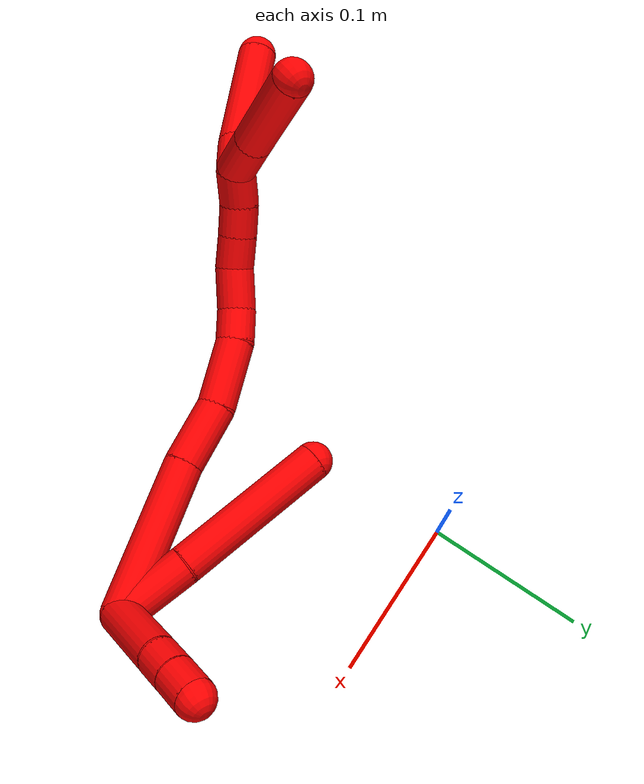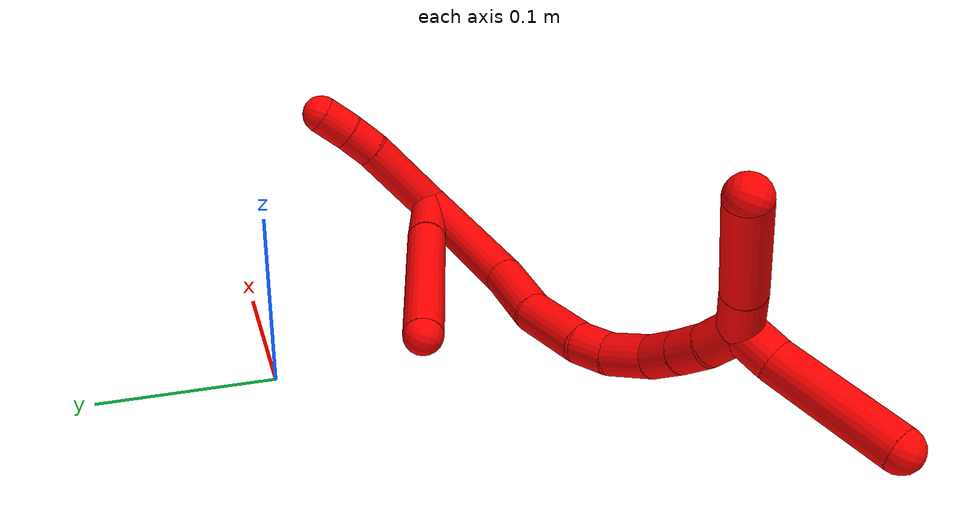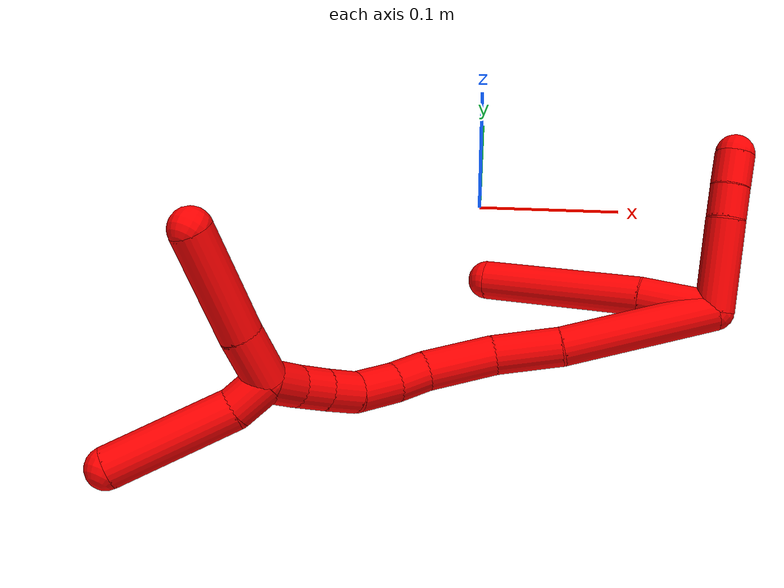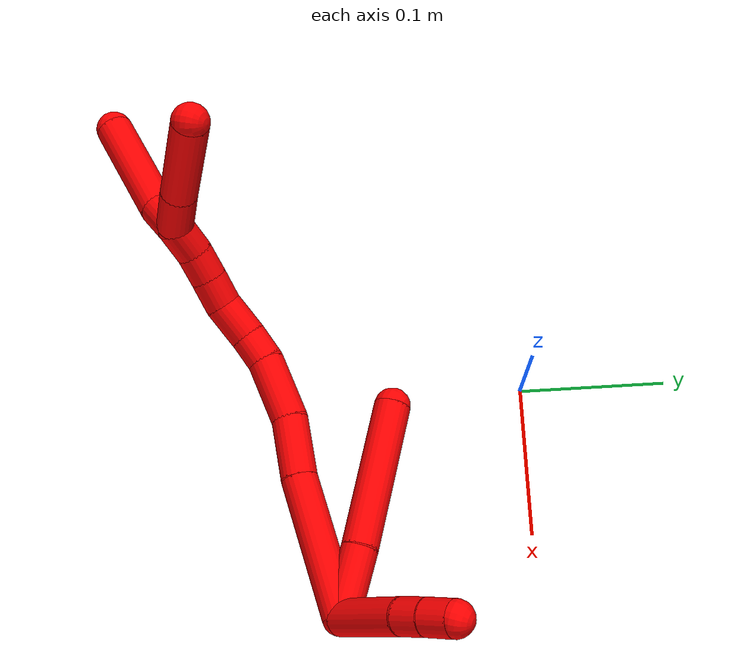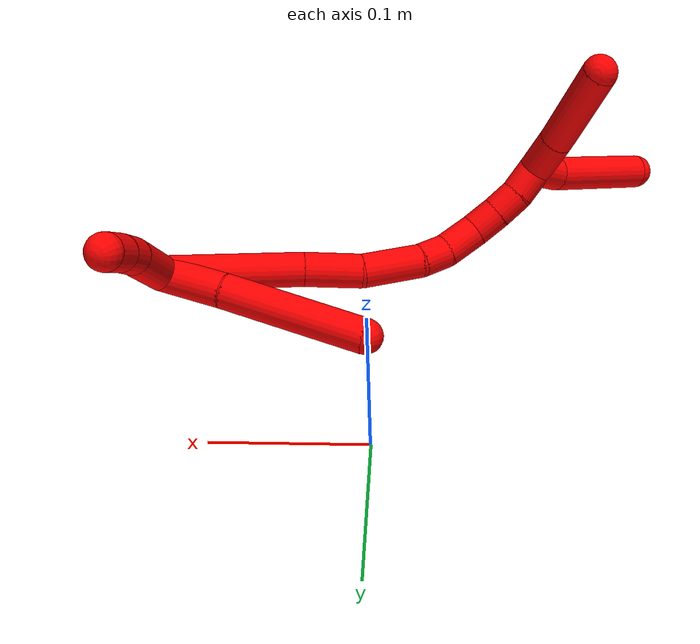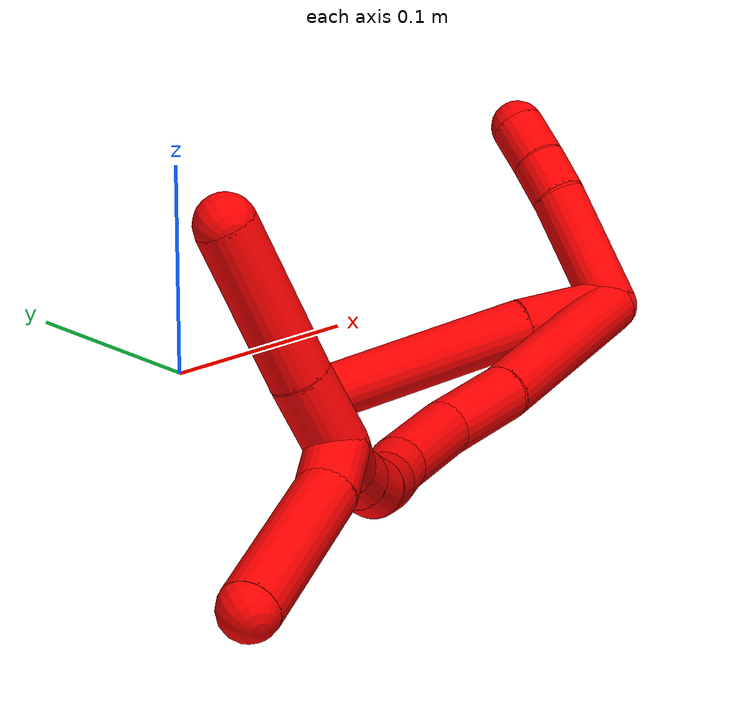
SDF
<sdf version="1.7">
 <world name="default">
  <model name="2">
   <static>0</static>
   <link name="2">
    <collision name="collision-cylinder-e_1_2_8">
     <pose>-0.009316 -0.021655 0.001677 1.49352 -0.405169 -0.37574</pose>
     <geometry><cylinder><radius>0.0125</radius><length>0.047266</length></cylinder></geometry>
     <surface>
      <friction><ode><mu>1.16</mu><mu2>1.16</mu2><slip1>0</slip1><slip2>0</slip2></ode></friction>
      <contact><ode><kp>1e+06</kp><kd>1</kd><max_vel>0</max_vel><min_depth>0.001</min_depth></ode></contact>
     </surface>
    </collision>
    <visual name="visual-cylinder-e_1_2_8">
     <pose>-0.009316 -0.021655 0.001677 1.49352 -0.405169 -0.37574</pose>
     <geometry><cylinder><radius>0.0125</radius><length>0.047266</length></cylinder></geometry>
     <material><ambient>1 0 0 1</ambient></material>
    </visual>
    <collision name="collision-cylinder-e_2_8_6">
     <pose>-0.035655 -0.091259 0.010397 1.42494 -0.337812 -0.292518</pose>
     <geometry><cylinder><radius>0.0125</radius><length>0.102734</length></cylinder></geometry>
     <surface>
      <friction><ode><mu>1.16</mu><mu2>1.16</mu2><slip1>0</slip1><slip2>0</slip2></ode></friction>
      <contact><ode><kp>1e+06</kp><kd>1</kd><max_vel>0</max_vel><min_depth>0.001</min_depth></ode></contact>
     </surface>
    </collision>
    <visual name="visual-cylinder-e_2_8_6">
     <pose>-0.035655 -0.091259 0.010397 1.42494 -0.337812 -0.292518</pose>
     <geometry><cylinder><radius>0.0125</radius><length>0.102734</length></cylinder></geometry>
     <material><ambient>1 0 0 1</ambient></material>
    </visual>
    <collision name="collision-cylinder-e_1_2_9">
     <pose>-0.014498 0.002185 -0.024985 -3.05435 -0.524136 2.81898</pose>
     <geometry><cylinder><radius>0.0125</radius><length>0.057938</length></cylinder></geometry>
     <surface>
      <friction><ode><mu>1.16</mu><mu2>1.16</mu2><slip1>0</slip1><slip2>0</slip2></ode></friction>
      <contact><ode><kp>1e+06</kp><kd>1</kd><max_vel>0</max_vel><min_depth>0.001</min_depth></ode></contact>
     </surface>
    </collision>
    <visual name="visual-cylinder-e_1_2_9">
     <pose>-0.014498 0.002185 -0.024985 -3.05435 -0.524136 2.81898</pose>
     <geometry><cylinder><radius>0.0125</radius><length>0.057938</length></cylinder></geometry>
     <material><ambient>1 0 0 1</ambient></material>
    </visual>
    <collision name="collision-cylinder-e_2_9_10">
     <pose>-0.033146 0.004626 -0.059387 -3.1145 -0.414976 3.01305</pose>
     <geometry><cylinder><radius>0.0125</radius><length>0.020588</length></cylinder></geometry>
     <surface>
      <friction><ode><mu>1.16</mu><mu2>1.16</mu2><slip1>0</slip1><slip2>0</slip2></ode></friction>
      <contact><ode><kp>1e+06</kp><kd>1</kd><max_vel>0</max_vel><min_depth>0.001</min_depth></ode></contact>
     </surface>
    </collision>
    <visual name="visual-cylinder-e_2_9_10">
     <pose>-0.033146 0.004626 -0.059387 -3.1145 -0.414976 3.01305</pose>
     <geometry><cylinder><radius>0.0125</radius><length>0.020588</length></cylinder></geometry>
     <material><ambient>1 0 0 1</ambient></material>
    </visual>
    <collision name="collision-cylinder-e_3_10_5">
     <pose>-0.040941 0.004908 -0.078903 -3.13894 -0.346272 3.12645</pose>
     <geometry><cylinder><radius>0.0125</radius><length>0.021473</length></cylinder></geometry>
     <surface>
      <friction><ode><mu>1.16</mu><mu2>1.16</mu2><slip1>0</slip1><slip2>0</slip2></ode></friction>
      <contact><ode><kp>1e+06</kp><kd>1</kd><max_vel>0</max_vel><min_depth>0.001</min_depth></ode></contact>
     </surface>
    </collision>
    <visual name="visual-cylinder-e_3_10_5">
     <pose>-0.040941 0.004908 -0.078903 -3.13894 -0.346272 3.12645</pose>
     <geometry><cylinder><radius>0.0125</radius><length>0.021473</length></cylinder></geometry>
     <material><ambient>1 0 0 1</ambient></material>
    </visual>
    <collision name="collision-cylinder-e_1_2_11">
     <pose>-0.020715 -0.03466 0.028487 0.882839 -0.432568 -0.206902</pose>
     <geometry><cylinder><radius>0.0125</radius><length>0.098832</length></cylinder></geometry>
     <surface>
      <friction><ode><mu>1.16</mu><mu2>1.16</mu2><slip1>0</slip1><slip2>0</slip2></ode></friction>
      <contact><ode><kp>1e+06</kp><kd>1</kd><max_vel>0</max_vel><min_depth>0.001</min_depth></ode></contact>
     </surface>
    </collision>
    <visual name="visual-cylinder-e_1_2_11">
     <pose>-0.020715 -0.03466 0.028487 0.882839 -0.432568 -0.206902</pose>
     <geometry><cylinder><radius>0.0125</radius><length>0.098832</length></cylinder></geometry>
     <material><ambient>1 0 0 1</ambient></material>
    </visual>
    <collision name="collision-cylinder-e_2_11_12">
     <pose>-0.050615 -0.085567 0.066901 1.02234 -0.449422 -0.255017</pose>
     <geometry><cylinder><radius>0.0125</radius><length>0.042279</length></cylinder></geometry>
     <surface>
      <friction><ode><mu>1.16</mu><mu2>1.16</mu2><slip1>0</slip1><slip2>0</slip2></ode></friction>
      <contact><ode><kp>1e+06</kp><kd>1</kd><max_vel>0</max_vel><min_depth>0.001</min_depth></ode></contact>
     </surface>
    </collision>
    <visual name="visual-cylinder-e_2_11_12">
     <pose>-0.050615 -0.085567 0.066901 1.02234 -0.449422 -0.255017</pose>
     <geometry><cylinder><radius>0.0125</radius><length>0.042279</length></cylinder></geometry>
     <material><ambient>1 0 0 1</ambient></material>
    </visual>
    <collision name="collision-cylinder-e_3_12_13">
     <pose>-0.071164 -0.115185 0.090566 0.771848 -0.535162 -0.221863</pose>
     <geometry><cylinder><radius>0.0125</radius><length>0.044572</length></cylinder></geometry>
     <surface>
      <friction><ode><mu>1.16</mu><mu2>1.16</mu2><slip1>0</slip1><slip2>0</slip2></ode></friction>
      <contact><ode><kp>1e+06</kp><kd>1</kd><max_vel>0</max_vel><min_depth>0.001</min_depth></ode></contact>
     </surface>
    </collision>
    <visual name="visual-cylinder-e_3_12_13">
     <pose>-0.071164 -0.115185 0.090566 0.771848 -0.535162 -0.221863</pose>
     <geometry><cylinder><radius>0.0125</radius><length>0.044572</length></cylinder></geometry>
     <material><ambient>1 0 0 1</ambient></material>
    </visual>
    <collision name="collision-cylinder-e_4_13_14">
     <pose>-0.088332 -0.132981 0.112201 0.510751 -0.569981 -0.152675</pose>
     <geometry><cylinder><radius>0.0125</radius><length>0.021504</length></cylinder></geometry>
     <surface>
      <friction><ode><mu>1.16</mu><mu2>1.16</mu2><slip1>0</slip1><slip2>0</slip2></ode></friction>
      <contact><ode><kp>1e+06</kp><kd>1</kd><max_vel>0</max_vel><min_depth>0.001</min_depth></ode></contact>
     </surface>
    </collision>
    <visual name="visual-cylinder-e_4_13_14">
     <pose>-0.088332 -0.132981 0.112201 0.510751 -0.569981 -0.152675</pose>
     <geometry><cylinder><radius>0.0125</radius><length>0.021504</length></cylinder></geometry>
     <material><ambient>1 0 0 1</ambient></material>
    </visual>
    <collision name="collision-cylinder-e_5_14_15">
     <pose>-0.10394 -0.140599 0.129411 0.330303 -0.783449 -0.137476</pose>
     <geometry><cylinder><radius>0.0125</radius><length>0.027791</length></cylinder></geometry>
     <surface>
      <friction><ode><mu>1.16</mu><mu2>1.16</mu2><slip1>0</slip1><slip2>0</slip2></ode></friction>
      <contact><ode><kp>1e+06</kp><kd>1</kd><max_vel>0</max_vel><min_depth>0.001</min_depth></ode></contact>
     </surface>
    </collision>
    <visual name="visual-cylinder-e_5_14_15">
     <pose>-0.10394 -0.140599 0.129411 0.330303 -0.783449 -0.137476</pose>
     <geometry><cylinder><radius>0.0125</radius><length>0.027791</length></cylinder></geometry>
     <material><ambient>1 0 0 1</ambient></material>
    </visual>
    <collision name="collision-cylinder-e_6_15_16">
     <pose>-0.123175 -0.146205 0.143381 0.478094 -1.06309 -0.28466</pose>
     <geometry><cylinder><radius>0.0125</radius><length>0.02158</length></cylinder></geometry>
     <surface>
      <friction><ode><mu>1.16</mu><mu2>1.16</mu2><slip1>0</slip1><slip2>0</slip2></ode></friction>
      <contact><ode><kp>1e+06</kp><kd>1</kd><max_vel>0</max_vel><min_depth>0.001</min_depth></ode></contact>
     </surface>
    </collision>
    <visual name="visual-cylinder-e_6_15_16">
     <pose>-0.123175 -0.146205 0.143381 0.478094 -1.06309 -0.28466</pose>
     <geometry><cylinder><radius>0.0125</radius><length>0.02158</length></cylinder></geometry>
     <material><ambient>1 0 0 1</ambient></material>
    </visual>
    <collision name="collision-cylinder-e_7_16_17">
     <pose>-0.141754 -0.150339 0.152226 0.389889 -1.11134 -0.243991</pose>
     <geometry><cylinder><radius>0.0125</radius><length>0.020415</length></cylinder></geometry>
     <surface>
      <friction><ode><mu>1.16</mu><mu2>1.16</mu2><slip1>0</slip1><slip2>0</slip2></ode></friction>
      <contact><ode><kp>1e+06</kp><kd>1</kd><max_vel>0</max_vel><min_depth>0.001</min_depth></ode></contact>
     </surface>
    </collision>
    <visual name="visual-cylinder-e_7_16_17">
     <pose>-0.141754 -0.150339 0.152226 0.389889 -1.11134 -0.243991</pose>
     <geometry><cylinder><radius>0.0125</radius><length>0.020415</length></cylinder></geometry>
     <material><ambient>1 0 0 1</ambient></material>
    </visual>
    <collision name="collision-cylinder-e_8_17_1">
     <pose>-0.161554 -0.151682 0.160767 -0.086677 -1.18141 0.058144</pose>
     <geometry><cylinder><radius>0.0125</radius><length>0.023026</length></cylinder></geometry>
     <surface>
      <friction><ode><mu>1.16</mu><mu2>1.16</mu2><slip1>0</slip1><slip2>0</slip2></ode></friction>
      <contact><ode><kp>1e+06</kp><kd>1</kd><max_vel>0</max_vel><min_depth>0.001</min_depth></ode></contact>
     </surface>
    </collision>
    <visual name="visual-cylinder-e_8_17_1">
     <pose>-0.161554 -0.151682 0.160767 -0.086677 -1.18141 0.058144</pose>
     <geometry><cylinder><radius>0.0125</radius><length>0.023026</length></cylinder></geometry>
     <material><ambient>1 0 0 1</ambient></material>
    </visual>
    <collision name="collision-cylinder-e_1_1_18">
     <pose>-0.172885 -0.157759 0.17521 0.569222 -0.056722 -0.016598</pose>
     <geometry><cylinder><radius>0.0125</radius><length>0.023993</length></cylinder></geometry>
     <surface>
      <friction><ode><mu>1.16</mu><mu2>1.16</mu2><slip1>0</slip1><slip2>0</slip2></ode></friction>
      <contact><ode><kp>1e+06</kp><kd>1</kd><max_vel>0</max_vel><min_depth>0.001</min_depth></ode></contact>
     </surface>
    </collision>
    <visual name="visual-cylinder-e_1_1_18">
     <pose>-0.172885 -0.157759 0.17521 0.569222 -0.056722 -0.016598</pose>
     <geometry><cylinder><radius>0.0125</radius><length>0.023993</length></cylinder></geometry>
     <material><ambient>1 0 0 1</ambient></material>
    </visual>
    <collision name="collision-cylinder-e_2_18_4">
     <pose>-0.185824 -0.186705 0.213373 0.675424 -0.328432 -0.116251</pose>
     <geometry><cylinder><radius>0.0125</radius><length>0.076007</length></cylinder></geometry>
     <surface>
      <friction><ode><mu>1.16</mu><mu2>1.16</mu2><slip1>0</slip1><slip2>0</slip2></ode></friction>
      <contact><ode><kp>1e+06</kp><kd>1</kd><max_vel>0</max_vel><min_depth>0.001</min_depth></ode></contact>
     </surface>
    </collision>
    <visual name="visual-cylinder-e_2_18_4">
     <pose>-0.185824 -0.186705 0.213373 0.675424 -0.328432 -0.116251</pose>
     <geometry><cylinder><radius>0.0125</radius><length>0.076007</length></cylinder></geometry>
     <material><ambient>1 0 0 1</ambient></material>
    </visual>
    <collision name="collision-cylinder-e_1_1_19">
     <pose>-0.187554 -0.151806 0.159217 3.05664 -1.2024 -3.01782</pose>
     <geometry><cylinder><radius>0.0125</radius><length>0.032905</length></cylinder></geometry>
     <surface>
      <friction><ode><mu>1.16</mu><mu2>1.16</mu2><slip1>0</slip1><slip2>0</slip2></ode></friction>
      <contact><ode><kp>1e+06</kp><kd>1</kd><max_vel>0</max_vel><min_depth>0.001</min_depth></ode></contact>
     </surface>
    </collision>
    <visual name="visual-cylinder-e_1_1_19">
     <pose>-0.187554 -0.151806 0.159217 3.05664 -1.2024 -3.01782</pose>
     <geometry><cylinder><radius>0.0125</radius><length>0.032905</length></cylinder></geometry>
     <material><ambient>1 0 0 1</ambient></material>
    </visual>
    <collision name="collision-cylinder-e_2_19_3">
     <pose>-0.233656 -0.151989 0.139915 -3.11771 -1.15981 3.10513</pose>
     <geometry><cylinder><radius>0.0125</radius><length>0.067095</length></cylinder></geometry>
     <surface>
      <friction><ode><mu>1.16</mu><mu2>1.16</mu2><slip1>0</slip1><slip2>0</slip2></ode></friction>
      <contact><ode><kp>1e+06</kp><kd>1</kd><max_vel>0</max_vel><min_depth>0.001</min_depth></ode></contact>
     </surface>
    </collision>
    <visual name="visual-cylinder-e_2_19_3">
     <pose>-0.233656 -0.151989 0.139915 -3.11771 -1.15981 3.10513</pose>
     <geometry><cylinder><radius>0.0125</radius><length>0.067095</length></cylinder></geometry>
     <material><ambient>1 0 0 1</ambient></material>
    </visual>
    <collision name="collision-sphere-3">
     <pose>-0.26441 -0.151669 0.126516 0 -0 0</pose>
     <geometry><sphere><radius>0.0125</radius></sphere></geometry>
     <surface>
      <friction><ode><mu>1.16</mu><mu2>1.16</mu2><slip1>0</slip1><slip2>0</slip2></ode></friction>
      <contact><ode><kp>1e+06</kp><kd>1</kd><max_vel>0</max_vel><min_depth>0.001</min_depth></ode></contact>
     </surface>
    </collision>
    <visual name="visual-sphere-3">
     <pose>-0.26441 -0.151669 0.126516 0 -0 0</pose>
     <geometry><sphere><radius>0.0125</radius></sphere></geometry>
     <material><ambient>1 0 0 1</ambient></material>
    </visual>
    <collision name="collision-sphere-19">
     <pose>-0.202903 -0.152309 0.153314 0 -0 0</pose>
     <geometry><sphere><radius>0.0125</radius></sphere></geometry>
     <surface>
      <friction><ode><mu>1.16</mu><mu2>1.16</mu2><slip1>0</slip1><slip2>0</slip2></ode></friction>
      <contact><ode><kp>1e+06</kp><kd>1</kd><max_vel>0</max_vel><min_depth>0.001</min_depth></ode></contact>
     </surface>
    </collision>
    <visual name="visual-sphere-19">
     <pose>-0.202903 -0.152309 0.153314 0 -0 0</pose>
     <geometry><sphere><radius>0.0125</radius></sphere></geometry>
     <material><ambient>1 0 0 1</ambient></material>
    </visual>
    <collision name="collision-sphere-5">
     <pose>-0.044585 0.004934 -0.089002 0 -0 0</pose>
     <geometry><sphere><radius>0.0125</radius></sphere></geometry>
     <surface>
      <friction><ode><mu>1.16</mu><mu2>1.16</mu2><slip1>0</slip1><slip2>0</slip2></ode></friction>
      <contact><ode><kp>1e+06</kp><kd>1</kd><max_vel>0</max_vel><min_depth>0.001</min_depth></ode></contact>
     </surface>
    </collision>
    <visual name="visual-sphere-5">
     <pose>-0.044585 0.004934 -0.089002 0 -0 0</pose>
     <geometry><sphere><radius>0.0125</radius></sphere></geometry>
     <material><ambient>1 0 0 1</ambient></material>
    </visual>
    <collision name="collision-sphere-10">
     <pose>-0.037297 0.004881 -0.068804 0 -0 0</pose>
     <geometry><sphere><radius>0.0125</radius></sphere></geometry>
     <surface>
      <friction><ode><mu>1.16</mu><mu2>1.16</mu2><slip1>0</slip1><slip2>0</slip2></ode></friction>
      <contact><ode><kp>1e+06</kp><kd>1</kd><max_vel>0</max_vel><min_depth>0.001</min_depth></ode></contact>
     </surface>
    </collision>
    <visual name="visual-sphere-10">
     <pose>-0.037297 0.004881 -0.068804 0 -0 0</pose>
     <geometry><sphere><radius>0.0125</radius></sphere></geometry>
     <material><ambient>1 0 0 1</ambient></material>
    </visual>
    <collision name="collision-sphere-6">
     <pose>-0.05268 -0.139208 0.017441 0 -0 0</pose>
     <geometry><sphere><radius>0.0125</radius></sphere></geometry>
     <surface>
      <friction><ode><mu>1.16</mu><mu2>1.16</mu2><slip1>0</slip1><slip2>0</slip2></ode></friction>
      <contact><ode><kp>1e+06</kp><kd>1</kd><max_vel>0</max_vel><min_depth>0.001</min_depth></ode></contact>
     </surface>
    </collision>
    <visual name="visual-sphere-6">
     <pose>-0.05268 -0.139208 0.017441 0 -0 0</pose>
     <geometry><sphere><radius>0.0125</radius></sphere></geometry>
     <material><ambient>1 0 0 1</ambient></material>
    </visual>
    <collision name="collision-sphere-9">
     <pose>-0.028996 0.00437 -0.04997 0 -0 0</pose>
     <geometry><sphere><radius>0.0125</radius></sphere></geometry>
     <surface>
      <friction><ode><mu>1.16</mu><mu2>1.16</mu2><slip1>0</slip1><slip2>0</slip2></ode></friction>
      <contact><ode><kp>1e+06</kp><kd>1</kd><max_vel>0</max_vel><min_depth>0.001</min_depth></ode></contact>
     </surface>
    </collision>
    <visual name="visual-sphere-9">
     <pose>-0.028996 0.00437 -0.04997 0 -0 0</pose>
     <geometry><sphere><radius>0.0125</radius></sphere></geometry>
     <material><ambient>1 0 0 1</ambient></material>
    </visual>
    <collision name="collision-sphere-2">
     <geometry><sphere><radius>0.0125</radius></sphere></geometry>
     <surface>
      <friction><ode><mu>1.16</mu><mu2>1.16</mu2><slip1>0</slip1><slip2>0</slip2></ode></friction>
      <contact><ode><kp>1e+06</kp><kd>1</kd><max_vel>0</max_vel><min_depth>0.001</min_depth></ode></contact>
     </surface>
    </collision>
    <visual name="visual-sphere-2">
     <geometry><sphere><radius>0.0125</radius></sphere></geometry>
     <material><ambient>1 0 0 1</ambient></material>
    </visual>
    <collision name="collision-sphere-8">
     <pose>-0.018631 -0.04331 0.003354 0 -0 0</pose>
     <geometry><sphere><radius>0.0125</radius></sphere></geometry>
     <surface>
      <friction><ode><mu>1.16</mu><mu2>1.16</mu2><slip1>0</slip1><slip2>0</slip2></ode></friction>
      <contact><ode><kp>1e+06</kp><kd>1</kd><max_vel>0</max_vel><min_depth>0.001</min_depth></ode></contact>
     </surface>
    </collision>
    <visual name="visual-sphere-8">
     <pose>-0.018631 -0.04331 0.003354 0 -0 0</pose>
     <geometry><sphere><radius>0.0125</radius></sphere></geometry>
     <material><ambient>1 0 0 1</ambient></material>
    </visual>
    <collision name="collision-sphere-11">
     <pose>-0.041431 -0.06932 0.056974 0 -0 0</pose>
     <geometry><sphere><radius>0.0125</radius></sphere></geometry>
     <surface>
      <friction><ode><mu>1.16</mu><mu2>1.16</mu2><slip1>0</slip1><slip2>0</slip2></ode></friction>
      <contact><ode><kp>1e+06</kp><kd>1</kd><max_vel>0</max_vel><min_depth>0.001</min_depth></ode></contact>
     </surface>
    </collision>
    <visual name="visual-sphere-11">
     <pose>-0.041431 -0.06932 0.056974 0 -0 0</pose>
     <geometry><sphere><radius>0.0125</radius></sphere></geometry>
     <material><ambient>1 0 0 1</ambient></material>
    </visual>
    <collision name="collision-sphere-12">
     <pose>-0.059799 -0.101815 0.076829 0 -0 0</pose>
     <geometry><sphere><radius>0.0125</radius></sphere></geometry>
     <surface>
      <friction><ode><mu>1.16</mu><mu2>1.16</mu2><slip1>0</slip1><slip2>0</slip2></ode></friction>
      <contact><ode><kp>1e+06</kp><kd>1</kd><max_vel>0</max_vel><min_depth>0.001</min_depth></ode></contact>
     </surface>
    </collision>
    <visual name="visual-sphere-12">
     <pose>-0.059799 -0.101815 0.076829 0 -0 0</pose>
     <geometry><sphere><radius>0.0125</radius></sphere></geometry>
     <material><ambient>1 0 0 1</ambient></material>
    </visual>
    <collision name="collision-sphere-13">
     <pose>-0.08253 -0.128556 0.104304 0 -0 0</pose>
     <geometry><sphere><radius>0.0125</radius></sphere></geometry>
     <surface>
      <friction><ode><mu>1.16</mu><mu2>1.16</mu2><slip1>0</slip1><slip2>0</slip2></ode></friction>
      <contact><ode><kp>1e+06</kp><kd>1</kd><max_vel>0</max_vel><min_depth>0.001</min_depth></ode></contact>
     </surface>
    </collision>
    <visual name="visual-sphere-13">
     <pose>-0.08253 -0.128556 0.104304 0 -0 0</pose>
     <geometry><sphere><radius>0.0125</radius></sphere></geometry>
     <material><ambient>1 0 0 1</ambient></material>
    </visual>
    <collision name="collision-sphere-14">
     <pose>-0.094134 -0.137406 0.120098 0 -0 0</pose>
     <geometry><sphere><radius>0.0125</radius></sphere></geometry>
     <surface>
      <friction><ode><mu>1.16</mu><mu2>1.16</mu2><slip1>0</slip1><slip2>0</slip2></ode></friction>
      <contact><ode><kp>1e+06</kp><kd>1</kd><max_vel>0</max_vel><min_depth>0.001</min_depth></ode></contact>
     </surface>
    </collision>
    <visual name="visual-sphere-14">
     <pose>-0.094134 -0.137406 0.120098 0 -0 0</pose>
     <geometry><sphere><radius>0.0125</radius></sphere></geometry>
     <material><ambient>1 0 0 1</ambient></material>
    </visual>
    <collision name="collision-sphere-15">
     <pose>-0.113746 -0.143792 0.138723 0 -0 0</pose>
     <geometry><sphere><radius>0.0125</radius></sphere></geometry>
     <surface>
      <friction><ode><mu>1.16</mu><mu2>1.16</mu2><slip1>0</slip1><slip2>0</slip2></ode></friction>
      <contact><ode><kp>1e+06</kp><kd>1</kd><max_vel>0</max_vel><min_depth>0.001</min_depth></ode></contact>
     </surface>
    </collision>
    <visual name="visual-sphere-15">
     <pose>-0.113746 -0.143792 0.138723 0 -0 0</pose>
     <geometry><sphere><radius>0.0125</radius></sphere></geometry>
     <material><ambient>1 0 0 1</ambient></material>
    </visual>
    <collision name="collision-sphere-16">
     <pose>-0.132605 -0.148619 0.148039 0 -0 0</pose>
     <geometry><sphere><radius>0.0125</radius></sphere></geometry>
     <surface>
      <friction><ode><mu>1.16</mu><mu2>1.16</mu2><slip1>0</slip1><slip2>0</slip2></ode></friction>
      <contact><ode><kp>1e+06</kp><kd>1</kd><max_vel>0</max_vel><min_depth>0.001</min_depth></ode></contact>
     </surface>
    </collision>
    <visual name="visual-sphere-16">
     <pose>-0.132605 -0.148619 0.148039 0 -0 0</pose>
     <geometry><sphere><radius>0.0125</radius></sphere></geometry>
     <material><ambient>1 0 0 1</ambient></material>
    </visual>
    <collision name="collision-sphere-17">
     <pose>-0.150903 -0.15206 0.156413 0 -0 0</pose>
     <geometry><sphere><radius>0.0125</radius></sphere></geometry>
     <surface>
      <friction><ode><mu>1.16</mu><mu2>1.16</mu2><slip1>0</slip1><slip2>0</slip2></ode></friction>
      <contact><ode><kp>1e+06</kp><kd>1</kd><max_vel>0</max_vel><min_depth>0.001</min_depth></ode></contact>
     </surface>
    </collision>
    <visual name="visual-sphere-17">
     <pose>-0.150903 -0.15206 0.156413 0 -0 0</pose>
     <geometry><sphere><radius>0.0125</radius></sphere></geometry>
     <material><ambient>1 0 0 1</ambient></material>
    </visual>
    <collision name="collision-sphere-1">
     <pose>-0.172205 -0.151303 0.165121 0 -0 0</pose>
     <geometry><sphere><radius>0.0125</radius></sphere></geometry>
     <surface>
      <friction><ode><mu>1.16</mu><mu2>1.16</mu2><slip1>0</slip1><slip2>0</slip2></ode></friction>
      <contact><ode><kp>1e+06</kp><kd>1</kd><max_vel>0</max_vel><min_depth>0.001</min_depth></ode></contact>
     </surface>
    </collision>
    <visual name="visual-sphere-1">
     <pose>-0.172205 -0.151303 0.165121 0 -0 0</pose>
     <geometry><sphere><radius>0.0125</radius></sphere></geometry>
     <material><ambient>1 0 0 1</ambient></material>
    </visual>
    <collision name="collision-sphere-18">
     <pose>-0.173565 -0.164214 0.185299 0 -0 0</pose>
     <geometry><sphere><radius>0.0125</radius></sphere></geometry>
     <surface>
      <friction><ode><mu>1.16</mu><mu2>1.16</mu2><slip1>0</slip1><slip2>0</slip2></ode></friction>
      <contact><ode><kp>1e+06</kp><kd>1</kd><max_vel>0</max_vel><min_depth>0.001</min_depth></ode></contact>
     </surface>
    </collision>
    <visual name="visual-sphere-18">
     <pose>-0.173565 -0.164214 0.185299 0 -0 0</pose>
     <geometry><sphere><radius>0.0125</radius></sphere></geometry>
     <material><ambient>1 0 0 1</ambient></material>
    </visual>
    <collision name="collision-sphere-4">
     <pose>-0.198082 -0.209196 0.241447 0 -0 0</pose>
     <geometry><sphere><radius>0.0125</radius></sphere></geometry>
     <surface>
      <friction><ode><mu>1.16</mu><mu2>1.16</mu2><slip1>0</slip1><slip2>0</slip2></ode></friction>
      <contact><ode><kp>1e+06</kp><kd>1</kd><max_vel>0</max_vel><min_depth>0.001</min_depth></ode></contact>
     </surface>
    </collision>
    <visual name="visual-sphere-4">
     <pose>-0.198082 -0.209196 0.241447 0 -0 0</pose>
     <geometry><sphere><radius>0.0125</radius></sphere></geometry>
     <material><ambient>1 0 0 1</ambient></material>
    </visual>
    <inertial>
     <pose>-0.090726 -0.095869 0.076566 0 -0 0</pose>
     <mass>0.75</mass>
     <inertia>
      <ixx>0.000119</ixx>
      <ixy>0</ixy>
      <ixz>0</ixz>
      <iyy>0.000115</iyy>
      <iyz>0</iyz>
      <izz>0.000343</izz>
     </inertia>
    </inertial>
   </link>
   <pose>0.150051 -0.130641 0.030921 2.23997 1.00812 0.226608</pose>
  </model>
 </world>
</sdf>
